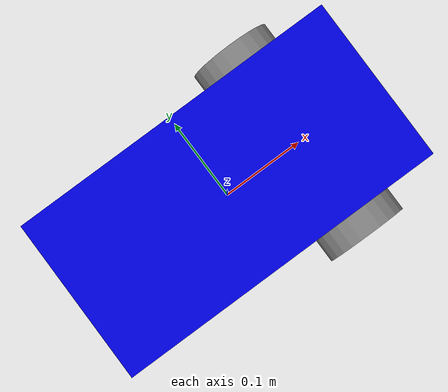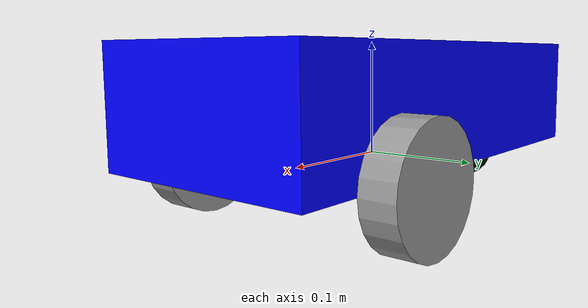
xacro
<?xml version="1.0"?>
<robot name="simple_robot" xmlns:xacro="http://ros.org/wiki/xacro">

  <!-- 公共参数 -->
  <xacro:property name="base_mass" value="5"/>
  <xacro:property name="wheel_mass" value="0.5"/>
  <xacro:property name="caster_mass" value="0.2"/>

  <!-- 底盘 -->
  <link name="base_link">
    <visual>
      <origin xyz="0 0 0.05" rpy="0 0 0"/>
      <geometry>
        <box size="0.4 0.2 0.1"/>
      </geometry>
      <material name="blue">
        <color rgba="0 0 1 1"/>
      </material>
    </visual>
    <collision>
      <origin xyz="0 0 0.05" rpy="0 0 0"/>
      <geometry>
        <box size="0.4 0.2 0.1"/>
      </geometry>
    </collision>
    <inertial>
      <mass value="${base_mass}"/>
      <inertia ixx="0.1" ixy="0" ixz="0" iyy="0.1" iyz="0" izz="0.2"/>
    </inertial>
  </link>

  <!-- 轮子宏定义 -->
  <xacro:macro name="wheel_macro" params="name parent x y">
    <link name="${name}_link">
      <visual>
        <origin xyz="0 0 0" rpy="1.5708 0 0"/>
        <geometry>
          <cylinder radius="0.05" length="0.03"/>
        </geometry>
        <material name="gray"/>
      </visual>
      <collision>
        <origin xyz="0 0 0" rpy="1.5708 0 0"/>
        <geometry>
          <cylinder radius="0.05" length="0.03"/>
        </geometry>
      </collision>
      <inertial>
        <mass value="${wheel_mass}"/>
        <inertia ixx="0.01" ixy="0" ixz="0" iyy="0.01" iyz="0" izz="0.01"/>
      </inertial>
    </link>

    <joint name="${name}_joint" type="continuous">
      <origin xyz="${x} ${y} 0"/>
      <parent link="${parent}"/>
      <child link="${name}_link"/>
      <axis xyz="0 1 0"/>
    </joint>
  </xacro:macro>

  <!-- 生成左右轮 -->
  <xacro:wheel_macro name="wheel_left" parent="base_link" x="0.1" y="0.115"/>
  <xacro:wheel_macro name="wheel_right" parent="base_link" x="0.1" y="-0.115"/>

  <!-- 万向轮 -->
  <link name="caster_link">
    <visual>
      <origin xyz="0 0 0" rpy="0 0 0"/>
      <geometry>
        <sphere radius="0.03"/>
      </geometry>
      <material name="black">
        <color rgba="0 0 0 1"/>
      </material>
    </visual>
    <collision>
      <origin xyz="0 0 0" rpy="0 0 0"/>
      <geometry>
        <sphere radius="0.03"/>
      </geometry>
    </collision>
    <inertial>
      <mass value="${caster_mass}"/>
      <inertia ixx="0.001" ixy="0" ixz="0" iyy="0.001" iyz="0" izz="0.001"/>
    </inertial>
  </link>

  <joint name="caster_joint" type="fixed">
    <origin xyz="-0.18 0 -0.02"/>
    <parent link="base_link"/>
    <child link="caster_link"/>
  </joint>

  <!-- 差速驱动插件 -->
  <gazebo>
    <plugin name="diff_drive" filename="libgazebo_ros_diff_drive.so">
      <rosDebugLevel>Debug</rosDebugLevel>
      <publishWheelTF>true</publishWheelTF>
      <publishOdomTF>true</publishOdomTF>
      <robotNamespace>/</robotNamespace>
      <leftJoint>wheel_left_joint</leftJoint>
      <rightJoint>wheel_right_joint</rightJoint>
      <wheelSeparation>0.23</wheelSeparation>
      <wheelDiameter>0.1</wheelDiameter>
      <commandTopic>cmd_vel</commandTopic>
      <odometryTopic>odom</odometryTopic>
      <odometryFrame>odom</odometryFrame>
      <robotBaseFrame>base_link</robotBaseFrame>
    </plugin>
  </gazebo>

</robot>
